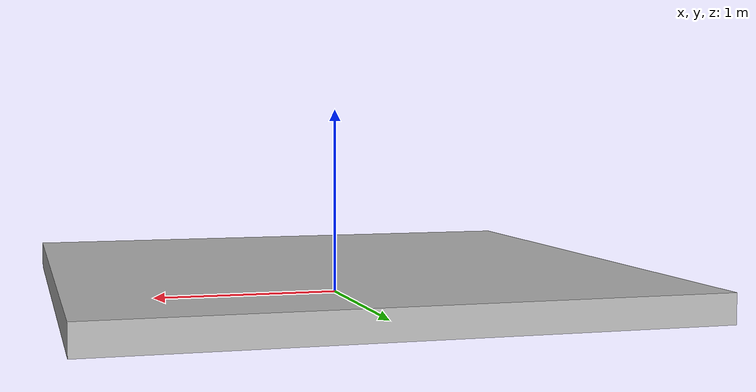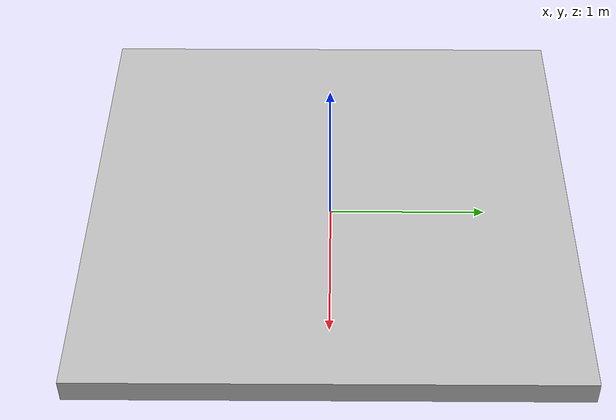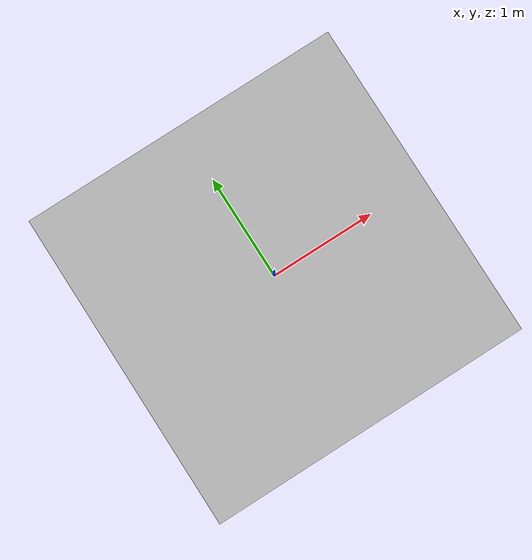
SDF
<?xml version="1.0" ?>
<sdf version="1.5">
  <model name="walkway_finish_opposite">
    <static>true</static>
    <link name="link">
      <collision name="collision">
        <pose>0 0 0.076075 0 0 0</pose>
        <geometry>
          <box>
            <size>3.048 3.048 0.15215</size>
          </box>
        </geometry>
      </collision>

      <visual name="visual">
        <geometry>
          <mesh>
            <scale>0.001 0.001 0.001</scale>
            <uri>model://walkway_finish_opposite/meshes/walkway_finish_opposite.obj</uri>
          </mesh>
        </geometry>
      </visual>
    </link>
  </model>
</sdf>
